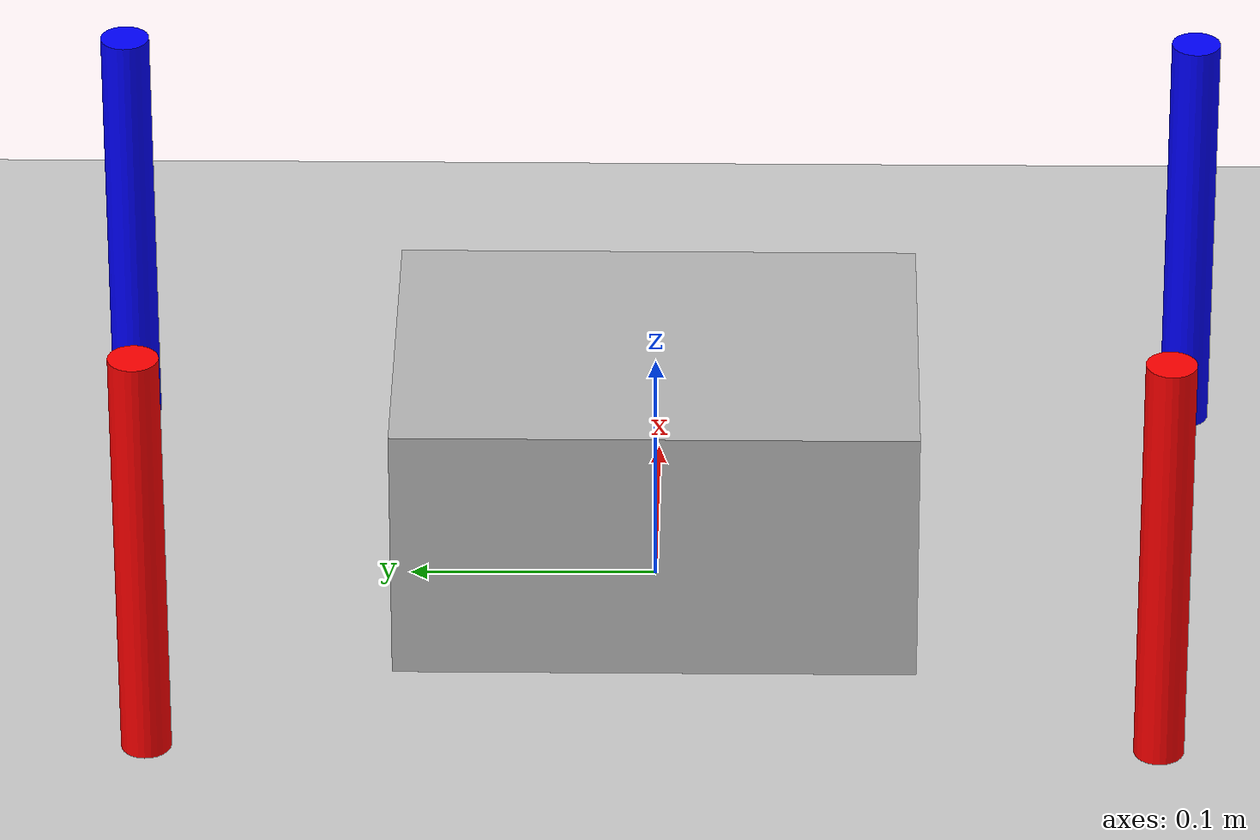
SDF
<?xml version="1.0" ?>
<sdf version="1.6">
  <world name="quadcopter">
    <plugin
      filename="gz-sim-apply-link-wrench-system"
      name="gz::sim::systems::ApplyLinkWrench">
    </plugin>

    <physics name="fast" type="ignored">
      <real_time_factor>0</real_time_factor>
    </physics>

    <plugin
      filename="gz-sim-physics-system"
      name="gz::sim::systems::Physics">
    </plugin>
    <plugin
      filename="gz-sim-scene-broadcaster-system"
      name="gz::sim::systems::SceneBroadcaster">
    </plugin>

    <model name="ground_plane">
      <static>true</static>
      <link name="link">
        <collision name="collision">
          <geometry>
            <plane>
              <normal>0 0 1</normal>
              <size>100 100</size>
            </plane>
          </geometry>
        </collision>
        <visual name="visual">
          <geometry>
            <plane>
              <normal>0 0 1</normal>
              <size>100 100</size>
            </plane>
          </geometry>
          <material>
            <ambient>0.8 0.8 0.8 1</ambient>
            <diffuse>0.8 0.8 0.8 1</diffuse>
            <specular>0.8 0.8 0.8 1</specular>
          </material>
        </visual>
      </link>
    </model>
    <model name="X3">
      <pose>0 0 0.053302 0 0 0</pose>
      <link name="base_link">
        <inertial>
          <mass>1.5</mass>
          <inertia>
            <ixx>0.0347563</ixx>
            <ixy>0</ixy>
            <ixz>0</ixz>
            <iyy>0.07</iyy>
            <iyz>0</iyz>
            <izz>0.0977</izz>
          </inertia>
        </inertial>
        <collision name="base_link_inertia_collision">
          <geometry>
            <box>
              <size>0.30 0.42 0.11</size>
            </box>
          </geometry>
        </collision>
        <visual name="base_link_inertia_visual">
          <geometry>
            <box>
              <size>0.15 0.21 0.11</size>
            </box>
          </geometry>
        </visual>
      </link>
      <link name="rotor_0">
        <pose frame="">0.13 -0.22 0.023 0 -0 0</pose>
        <inertial>
          <mass>0.005</mass>
          <inertia>
            <ixx>9.75e-07</ixx>
            <ixy>0</ixy>
            <ixz>0</ixz>
            <iyy>4.17041e-05</iyy>
            <iyz>0</iyz>
            <izz>4.26041e-05</izz>
          </inertia>
        </inertial>
        <collision name="rotor_0_collision">
          <geometry>
            <cylinder>
              <length>0.005</length>
              <radius>0.1</radius>
            </cylinder>
          </geometry>
        </collision>
        <visual name="rotor_0_visual">
          <geometry>
            <cylinder>
              <length>0.2</length>
              <radius>0.01</radius>
            </cylinder>
          </geometry>
          <material>
            <diffuse>0 0 1 1</diffuse>
          </material>
        </visual>
      </link>
      <joint name="rotor_0_joint" type="revolute">
        <child>rotor_0</child>
        <parent>base_link</parent>
        <axis>
          <xyz>0 0 1</xyz>
          <limit>
            <lower>-1e+16</lower>
            <upper>1e+16</upper>
          </limit>
        </axis>
      </joint>
      <link name="rotor_1">
        <pose>-0.13 0.2 0.023 0 -0 0</pose>
        <inertial>
          <mass>0.005</mass>
          <inertia>
            <ixx>9.75e-07</ixx>
            <ixy>0</ixy>
            <ixz>0</ixz>
            <iyy>4.17041e-05</iyy>
            <iyz>0</iyz>
            <izz>4.26041e-05</izz>
          </inertia>
        </inertial>
        <collision name="rotor_1_collision">
          <geometry>
            <cylinder>
              <length>0.005</length>
              <radius>0.1</radius>
            </cylinder>
          </geometry>
        </collision>
        <visual name="rotor_1_visual">
          <geometry>
            <cylinder>
              <length>0.2</length>
              <radius>0.01</radius>
            </cylinder>
          </geometry>
          <material>
            <diffuse>1 0 0 1</diffuse>
          </material>
        </visual>
      </link>
      <joint name="rotor_1_joint" type="revolute">
        <child>rotor_1</child>
        <parent>base_link</parent>
        <axis>
          <xyz>0 0 1</xyz>
          <limit>
            <lower>-1e+16</lower>
            <upper>1e+16</upper>
          </limit>
        </axis>
      </joint>
      <link name="rotor_2">
        <pose>0.13 0.22 0.023 0 -0 0</pose>
        <inertial>
          <mass>0.005</mass>
          <inertia>
            <ixx>9.75e-07</ixx>
            <ixy>0</ixy>
            <ixz>0</ixz>
            <iyy>4.17041e-05</iyy>
            <iyz>0</iyz>
            <izz>4.26041e-05</izz>
          </inertia>
        </inertial>
        <collision name="rotor_2_collision">
          <geometry>
            <cylinder>
              <length>0.005</length>
              <radius>0.1</radius>
            </cylinder>
          </geometry>
        </collision>
        <visual name="rotor_2_visual">
          <geometry>
            <cylinder>
              <length>0.2</length>
              <radius>0.01</radius>
            </cylinder>
          </geometry>
          <material>
            <diffuse>0 0 1 1</diffuse>
          </material>
        </visual>
      </link>
      <joint name="rotor_2_joint" type="revolute">
        <child>rotor_2</child>
        <parent>base_link</parent>
        <axis>
          <xyz>0 0 1</xyz>
          <limit>
            <lower>-1e+16</lower>
            <upper>1e+16</upper>
          </limit>
        </axis>
      </joint>
      <link name="rotor_3">
        <pose>-0.13 -0.2 0.023 0 -0 0</pose>
        <inertial>
          <mass>0.005</mass>
          <inertia>
            <ixx>9.75e-07</ixx>
            <ixy>0</ixy>
            <ixz>0</ixz>
            <iyy>4.17041e-05</iyy>
            <iyz>0</iyz>
            <izz>4.26041e-05</izz>
          </inertia>
        </inertial>
        <collision name="rotor_3_collision">
          <geometry>
            <cylinder>
              <length>0.005</length>
              <radius>0.1</radius>
            </cylinder>
          </geometry>
        </collision>
        <visual name="rotor_3_visual">
          <geometry>
            <cylinder>
              <length>0.2</length>
              <radius>0.01</radius>
            </cylinder>
          </geometry>
          <material>
            <diffuse>1 0 0 1</diffuse>
          </material>
        </visual>
      </link>
      <joint name="rotor_3_joint" type="revolute">
        <child>rotor_3</child>
        <parent>base_link</parent>
        <axis>
          <xyz>0 0 1</xyz>
          <limit>
            <lower>-1e+16</lower>
            <upper>1e+16</upper>
          </limit>
        </axis>
      </joint>

      <model name="nested_payload">
        <link name='link'>
          <inertial>
            <mass>2</mass>
            <inertia>
              <ixx>0.00166667</ixx>
              <ixy>0</ixy>
              <ixz>0</ixz>
              <iyy>0.00166667</iyy>
              <iyz>0</iyz>
              <izz>0.00166667</izz>
             </inertia>
          </inertial>
          <collision name='collision'>
            <pose>0.025 0 0 0 1.57079 0</pose>
            <geometry>
              <cylinder>
                <radius>0.05</radius>
                <length>0.05</length>
              </cylinder>
            </geometry>
          </collision>
          <visual name='visual'>
            <pose>0.025 0 0 0 1.57079 0</pose>
            <geometry>
              <cylinder>
                <radius>0.05</radius>
                <length>0.05</length>
              </cylinder>
            </geometry>
            <material>
              <diffuse>0.05 0.05 0.05</diffuse>
              <specular>0.8 0.8 0.8</specular>
            </material>
          </visual>
        </link>
        <link name='link_1'>
          <inertial>
            <mass>2</mass>
            <inertia>
              <ixx>0.00166667</ixx>
              <ixy>0</ixy>
              <ixz>0</ixz>
              <iyy>0.00166667</iyy>
              <iyz>0</iyz>
              <izz>0.00166667</izz>
             </inertia>
          </inertial>
          <collision name='collision_1'>
            <pose>0.0505 0 0 0 1.57079 0</pose>
            <geometry>
              <cylinder>
                <radius>0.04</radius>
                <length>0.01</length>
              </cylinder>
            </geometry>
          </collision>
          <visual name='visual_1'>
            <pose>0.0505 0 0 0 1.57079 0</pose>
            <geometry>
              <cylinder>
                <radius>0.04</radius>
                <length>0.01</length>
              </cylinder>
            </geometry>
            <material>
              <diffuse>0.02 0.02 0.02</diffuse>
              <specular>0.3 0.3 0.3</specular>
            </material>
          </visual>
        </link>
        <joint name='link_joint' type='fixed'>
          <parent>link</parent>
          <child>link_1</child>
        </joint>
      </model>
      <joint name='payload_joint' type='fixed'>
        <parent>base_link</parent>
        <child>nested_payload::link</child>
      </joint>

      <plugin
        filename="gz-sim-multicopter-motor-model-system"
        name="gz::sim::systems::MulticopterMotorModel">
        <robotNamespace>X3</robotNamespace>
        <jointName>rotor_0_joint</jointName>
        <linkName>rotor_0</linkName>
        <turningDirection>ccw</turningDirection>
        <timeConstantUp>0.0125</timeConstantUp>
        <timeConstantDown>0.025</timeConstantDown>
        <maxRotVelocity>8000.0</maxRotVelocity>
        <motorConstant>2.54858e-05</motorConstant>
        <momentConstant>0.016</momentConstant>
        <commandSubTopic>gazebo/command/motor_speed</commandSubTopic>
        <motorNumber>0</motorNumber>
        <rotorDragCoefficient>8.06428e-05</rotorDragCoefficient>
        <rollingMomentCoefficient>1e-06</rollingMomentCoefficient>
        <motorSpeedPubTopic>motor_speed/0</motorSpeedPubTopic>
        <rotorVelocitySlowdownSim>1</rotorVelocitySlowdownSim>
        <motorType>velocity</motorType>
      </plugin>
      <plugin
        filename="gz-sim-multicopter-motor-model-system"
        name="gz::sim::systems::MulticopterMotorModel">
        <robotNamespace>X3</robotNamespace>
        <jointName>rotor_1_joint</jointName>
        <linkName>rotor_1</linkName>
        <turningDirection>ccw</turningDirection>
        <timeConstantUp>0.0125</timeConstantUp>
        <timeConstantDown>0.025</timeConstantDown>
        <maxRotVelocity>8000.0</maxRotVelocity>
        <motorConstant>2.54858e-05</motorConstant>
        <momentConstant>0.016</momentConstant>
        <commandSubTopic>gazebo/command/motor_speed</commandSubTopic>
        <motorNumber>1</motorNumber>
        <rotorDragCoefficient>8.06428e-05</rotorDragCoefficient>
        <rollingMomentCoefficient>1e-06</rollingMomentCoefficient>
        <motorSpeedPubTopic>motor_speed/1</motorSpeedPubTopic>
        <rotorVelocitySlowdownSim>1</rotorVelocitySlowdownSim>
        <motorType>velocity</motorType>
      </plugin>
      <plugin
        filename="gz-sim-multicopter-motor-model-system"
        name="gz::sim::systems::MulticopterMotorModel">
        <robotNamespace>X3</robotNamespace>
        <jointName>rotor_2_joint</jointName>
        <linkName>rotor_2</linkName>
        <turningDirection>cw</turningDirection>
        <timeConstantUp>0.0125</timeConstantUp>
        <timeConstantDown>0.025</timeConstantDown>
        <maxRotVelocity>8000.0</maxRotVelocity>
        <motorConstant>2.54858e-05</motorConstant>
        <momentConstant>0.016</momentConstant>
        <commandSubTopic>gazebo/command/motor_speed</commandSubTopic>
        <motorNumber>2</motorNumber>
        <rotorDragCoefficient>8.06428e-05</rotorDragCoefficient>
        <rollingMomentCoefficient>1e-06</rollingMomentCoefficient>
        <motorSpeedPubTopic>motor_speed/2</motorSpeedPubTopic>
        <rotorVelocitySlowdownSim>1</rotorVelocitySlowdownSim>
        <motorType>velocity</motorType>
      </plugin>
      <plugin
        filename="gz-sim-multicopter-motor-model-system"
        name="gz::sim::systems::MulticopterMotorModel">
        <robotNamespace>X3</robotNamespace>
        <jointName>rotor_3_joint</jointName>
        <linkName>rotor_3</linkName>
        <turningDirection>cw</turningDirection>
        <timeConstantUp>0.0125</timeConstantUp>
        <timeConstantDown>0.025</timeConstantDown>
        <maxRotVelocity>8000.0</maxRotVelocity>
        <motorConstant>2.54858e-05</motorConstant>
        <momentConstant>0.016</momentConstant>
        <commandSubTopic>gazebo/command/motor_speed</commandSubTopic>
        <motorNumber>3</motorNumber>
        <rotorDragCoefficient>8.06428e-05</rotorDragCoefficient>
        <rollingMomentCoefficient>1e-06</rollingMomentCoefficient>
        <motorSpeedPubTopic>motor_speed/3</motorSpeedPubTopic>
        <rotorVelocitySlowdownSim>1</rotorVelocitySlowdownSim>
        <motorType>velocity</motorType>
      </plugin>
      <plugin
        filename="gz-sim-multicopter-control-system"
        name="gz::sim::systems::MulticopterVelocityControl">
        <robotNamespace>X3</robotNamespace>
        <commandSubTopic>gazebo/command/twist</commandSubTopic>
        <enableSubTopic>enable</enableSubTopic>
        <comLinkName>base_link</comLinkName>
        <velocityGain>2.7 2.7 2.7</velocityGain>
        <attitudeGain>10 10 0.15</attitudeGain>
        <angularRateGain>0.4 0.52 0.18</angularRateGain>
        <maximumLinearAcceleration>2 2 2</maximumLinearAcceleration>

        <rotorConfiguration>
          <rotor>
            <jointName>rotor_0_joint</jointName>
            <forceConstant>8.54858e-06</forceConstant>
            <momentConstant>0.016</momentConstant>
            <direction>1</direction>
          </rotor>
          <rotor>
            <jointName>rotor_1_joint</jointName>
            <forceConstant>8.54858e-06</forceConstant>
            <momentConstant>0.016</momentConstant>
            <direction>1</direction>
          </rotor>
          <rotor>
            <jointName>rotor_2_joint</jointName>
            <forceConstant>8.54858e-06</forceConstant>
            <momentConstant>0.016</momentConstant>
            <direction>-1</direction>
          </rotor>
          <rotor>
            <jointName>rotor_3_joint</jointName>
            <forceConstant>8.54858e-06</forceConstant>
            <momentConstant>0.016</momentConstant>
            <direction>-1</direction>
          </rotor>
        </rotorConfiguration>
      </plugin>
    </model>
  </world>
</sdf>
